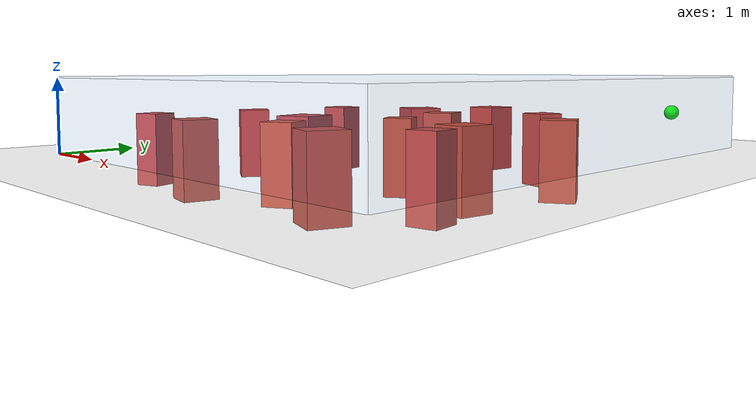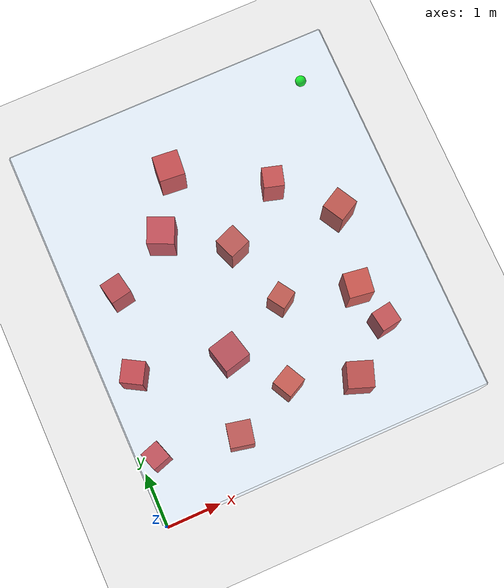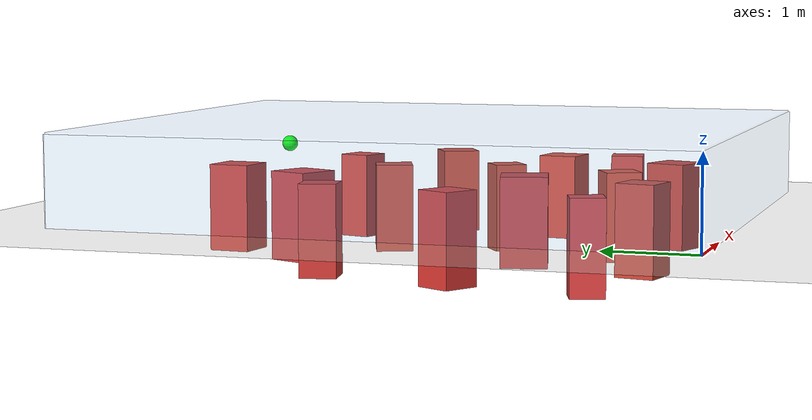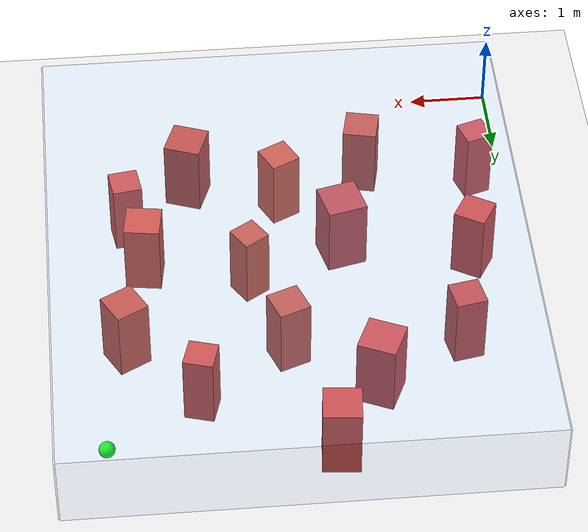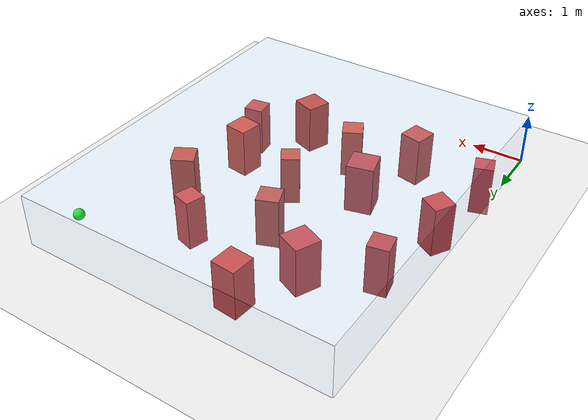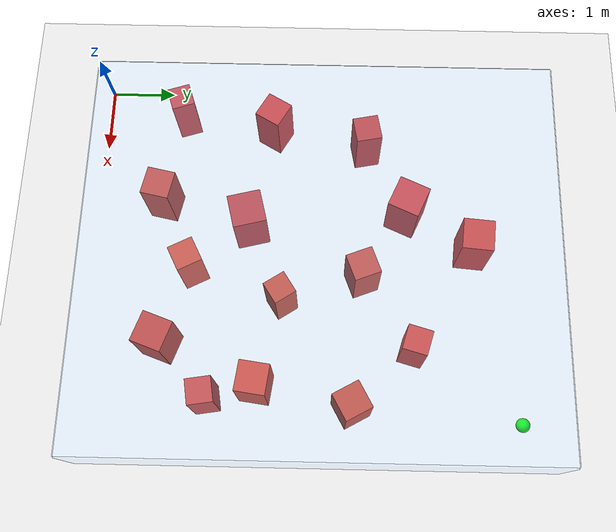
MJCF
<mujoco model="Safe APF Cluttered Map">
    <option timestep="0.001"/>

    <asset>
        <material name="boundary" rgba="0.5 0.7 0.9 0.12"/>
    </asset>

    <worldbody>
        <geom name="floor" type="plane" size="0 0 0.05" rgba="0.8 0.8 0.8 1"/>

        <geom name="ceiling" type="box" pos="3.0 3.5 1.0" size="3.0 3.5 0.02"
              material="boundary" contype="0" conaffinity="0"/>
        <geom name="wall_xn" type="box" pos="0.0 3.5 0.5" size="0.02 3.5 0.5"
              material="boundary" contype="0" conaffinity="0"/>
        <geom name="wall_xp" type="box" pos="6.0 3.5 0.5" size="0.02 3.5 0.5"
              material="boundary" contype="0" conaffinity="0"/>
        <geom name="wall_yn" type="box" pos="3.0 0.0 0.5" size="3.0 0.02 0.5"
              material="boundary" contype="0" conaffinity="0"/>
        <geom name="wall_yp" type="box" pos="3.0 7.0 0.5" size="3.0 0.02 0.5"
              material="boundary" contype="0" conaffinity="0"/>

        <body name="clutter_cube_00" pos="0.30 1.20 0.0" euler="0 0 18">
            <geom type="box" size="0.18 0.18 0.5"
                  rgba="0.85 0.25 0.25 1"
                  contype="1" conaffinity="1"
                  density="1000"/>
        </body>

        <body name="clutter_cube_01" pos="1.80 0.95 0.0" euler="0 0 -12">
            <geom type="box" size="0.22 0.22 0.5"
                  rgba="0.83 0.28 0.22 1"
                  contype="1" conaffinity="1"
                  density="1000"/>
        </body>

        <body name="clutter_cube_02" pos="2.95 1.45 0.0" euler="0 0 27">
            <geom type="box" size="0.20 0.20 0.5"
                  rgba="0.88 0.30 0.20 1"
                  contype="1" conaffinity="1"
                  density="1000"/>
        </body>

        <body name="clutter_cube_03" pos="4.15 1.05 0.0" euler="0 0 -20">
            <geom type="box" size="0.24 0.24 0.5"
                  rgba="0.82 0.24 0.18 1"
                  contype="1" conaffinity="1"
                  density="1000"/>
        </body>

        <body name="clutter_cube_04" pos="5.00 1.80 0.0" euler="0 0 9">
            <geom type="box" size="0.19 0.19 0.5"
                  rgba="0.86 0.26 0.22 1"
                  contype="1" conaffinity="1"
                  density="1000"/>
        </body>

        <body name="clutter_cube_05" pos="0.5 2.70 0.0" euler="0 0 -30">
            <geom type="box" size="0.21 0.21 0.5"
                  rgba="0.87 0.22 0.20 1"
                  contype="1" conaffinity="1"
                  density="1000"/>
        </body>

        <body name="clutter_cube_06" pos="2.20 2.35 0.0" euler="0 0 14">
            <geom type="box" size="0.26 0.26 0.5"
                  rgba="0.80 0.24 0.24 1"
                  contype="1" conaffinity="1"
                  density="1000"/>
        </body>

        <body name="clutter_cube_07" pos="3.45 2.90 0.0" euler="0 0 33">
            <geom type="box" size="0.18 0.18 0.5"
                  rgba="0.84 0.29 0.19 1"
                  contype="1" conaffinity="1"
                  density="1000"/>
        </body>

        <body name="clutter_cube_08" pos="4.80 2.55 0.0" euler="0 0 -8">
            <geom type="box" size="0.23 0.23 0.5"
                  rgba="0.89 0.27 0.18 1"
                  contype="1" conaffinity="1"
                  density="1000"/>
        </body>

        <body name="clutter_cube_09" pos="0.80 4.20 0.0" euler="0 0 11">
            <geom type="box" size="0.20 0.20 0.5"
                  rgba="0.81 0.23 0.21 1"
                  contype="1" conaffinity="1"
                  density="1000"/>
        </body>

        <body name="clutter_cube_10" pos="1.95 4.85 0.0" euler="0 0 -24">
            <geom type="box" size="0.25 0.25 0.5"
                  rgba="0.86 0.24 0.24 1"
                  contype="1" conaffinity="1"
                  density="1000"/>
        </body>

        <body name="clutter_cube_11" pos="3.05 4.15 0.0" euler="0 0 21">
            <geom type="box" size="0.21 0.21 0.5"
                  rgba="0.82 0.29 0.22 1"
                  contype="1" conaffinity="1"
                  density="1000"/>
        </body>

        <body name="clutter_cube_12" pos="4.20 4.95 0.0" euler="0 0 -16">
            <geom type="box" size="0.19 0.19 0.5"
                  rgba="0.88 0.25 0.20 1"
                  contype="1" conaffinity="1"
                  density="1000"/>
        </body>

        <body name="clutter_cube_13" pos="5.10 4.00 0.0" euler="0 0 29">
            <geom type="box" size="0.22 0.22 0.5"
                  rgba="0.83 0.27 0.18 1"
                  contype="1" conaffinity="1"
                  density="1000"/>
        </body>

        <body name="clutter_cube_14" pos="2.55 5.90 0.0" euler="0 0 -5">
            <geom type="box" size="0.24 0.24 0.5"
                  rgba="0.87 0.23 0.19 1"
                  contype="1" conaffinity="1"
                  density="1000"/>
        </body>

        <body name="goal" pos="5.4 6.4 0.5">
            <geom type="sphere" size="0.1"
                  rgba="0 1 0 1"
                  contype="0" conaffinity="0"/>
        </body>
    </worldbody>
</mujoco>
